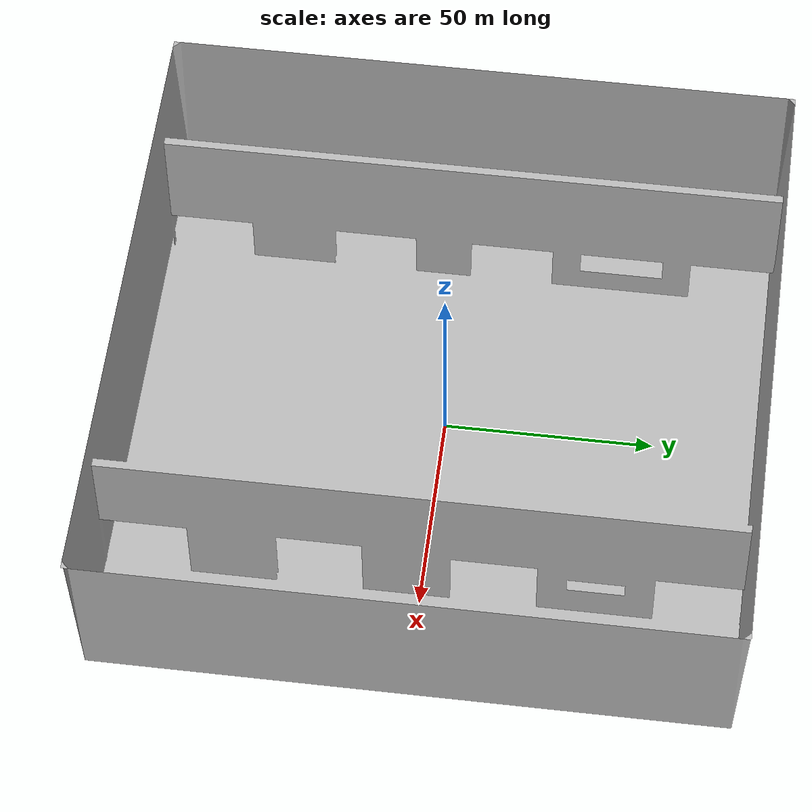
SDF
<?xml version="1.0" ?>
<sdf version="1.6">
  <world name="default">
    <!-- Inclui o seu mapa -->
    <include>
      <uri>file:///home/ruben/Documents/Projeto Final/veiculo_terrestre/urdf/meu_mundo.sdf</uri>
    </include>

    <!-- Inclui o robô -->
    <include>
      <uri>file:///home/ruben/Documents/Projeto Final/veiculo_terrestre/urdf/veiculo_terrestre.sdf</uri>
      <name>meu_robo</name>
      <pose>0 0 0 0 0 0</pose> <!-- posição inicial -->
    </include>
  </world>
</sdf>

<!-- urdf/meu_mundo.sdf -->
<sdf version="1.6">
  <model name="corredor_map">
    <static>true</static>
    <link name="base_link">
      <pose>0 0 0 0 0 0</pose>
      <visual name="visual">
        <geometry>
          <mesh>
            <uri>file:///home/ruben/Documents/Projeto Final/veiculo_terrestre/meshes/corredor.dae</uri>
            <scale>1 1 1</scale>
          </mesh>
        </geometry>
      </visual>
      <collision name="collision">
        <geometry>
          <mesh>
            <uri>file:///home/ruben/Documents/Projeto Final/veiculo_terrestre/meshes/corredot_stl.stl</uri>
            <scale>1 1 1</scale>
          </mesh>
        </geometry>
      </collision>
      <inertial>
        <mass>10.0</mass>
        <inertia>
          <ixx>1.0</ixx>
          <iyy>1.0</iyy>
          <izz>1.0</izz>
          <ixy>0.0</ixy>
          <ixz>0.0</ixz>
          <iyz>0.0</iyz>
        </inertia>
      </inertial>
    </link>
  </model>
</sdf>

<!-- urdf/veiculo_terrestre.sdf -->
<sdf version='1.11'>
  <model name='veiculo_terrestre'>
    <link name='base_link'>
      <inertial>
        <pose>0 0 0 0 0 0</pose>
        <mass>1</mass>
        <inertia>
          <ixx>1</ixx>
          <ixy>0</ixy>
          <ixz>0</ixz>
          <iyy>1</iyy>
          <iyz>0</iyz>
          <izz>1</izz>
        </inertia>
      </inertial>
      <collision name='base_link_collision'>
        <pose>0 0 0 0 0 0</pose>
        <geometry>
          <mesh>
            <scale>1 1 1</scale>
            <uri>file:///home/ruben/Documents/Projeto Final/veiculo_terrestre/meshes/robo.dae</uri>
	</mesh>
        </geometry>
      </collision>
      <visual name='base_link_visual'>
        <pose>0 0 0 0 0 0</pose>
        <geometry>
          <mesh>
            <scale>1 1 1</scale>
            <uri>file:///home/ruben/Documents/Projeto Final/veiculo_terrestre/meshes/robo.dae</uri>
	  </mesh>
        </geometry>
      </visual>
    </link>
  </model>
</sdf>
